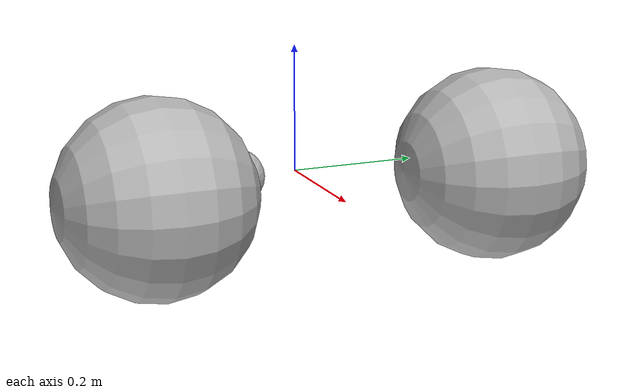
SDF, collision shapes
<sdf version='1.6'>
  <model name='Eve_base'>
    <link name='base'>
      <pose frame=''>0 0 0 0 -0 0</pose>
      <inertial>
        <pose frame=''>0.021997 0.006327 -0.006204 0 -0 0</pose>
        <mass>13.6475</mass>
        <inertia>
          <ixx>0.461101</ixx>
          <ixy>-0.004042</ixy>
          <ixz>-0.02001</ixz>
          <iyy>0.246583</iyy>
          <iyz>-0.00011</iyz>
          <izz>0.67952</izz>
        </inertia>
      </inertial>
      <collision name='base_collision'>
        <pose frame=''>-0.28 0 -0.08 1.5708 -0 1.5708</pose>
        <geometry>
          <sphere>
            <radius>0.05</radius>
          </sphere>
        </geometry>
      </collision>
      <visual name='base_visual'>
        <pose frame=''>0 0 0 1.5708 -0 1.5708</pose>
        <geometry>
          <mesh>
            <scale>1 1 1</scale>
            <uri>model://eve/meshes/base_wheels.obj</uri>
          </mesh>
        </geometry>
      </visual>
    </link>
    <link name='l_wheel'>
      <pose frame=''>0.142 0.26983 0.019 0 -0 0</pose>
      <inertial>
        <pose frame=''>0 0 0 0 -0 0</pose>
        <mass>1.52693</mass>
        <inertia>
          <ixx>0.007129</ixx>
          <ixy>-0</ixy>
          <ixz>-0</ixz>
          <iyy>0.013685</iyy>
          <iyz>-0</iyz>
          <izz>0.007131</izz>
        </inertia>
      </inertial>
      <collision name='l_wheel_collision'>
        <pose frame=''>0 0 0 1.5708 -0 0</pose>
        <geometry>
          <sphere>
            <radius>0.15</radius>
          </sphere>
        </geometry>
      </collision>
      <visual name='l_wheel_visual'>
        <pose frame=''>0 0 0 1.5708 0 -1.5708</pose>
        <geometry>
          <mesh>
            <scale>1 1 1</scale>
            <uri>model://eve/meshes/wheel.obj</uri>
          </mesh>
        </geometry>
      </visual>
    </link>
    <joint name='j_l_wheel_y' type='revolute'>
      <child>l_wheel</child>
      <parent>base</parent>
      <axis>
        <xyz>0 1 0</xyz>
        <limit>
          <lower>-1e+16</lower>
          <upper>1e+16</upper>
          <effort>-1</effort>
          <velocity>1</velocity>
        </limit>
        <dynamics>
          <spring_reference>0</spring_reference>
          <spring_stiffness>0</spring_stiffness>
        </dynamics>
        <use_parent_model_frame>1</use_parent_model_frame>
      </axis>
    </joint>
    <link name='r_wheel'>
      <pose frame=''>0.142 -0.26983 0.019 0 -0 0</pose>
      <inertial>
        <pose frame=''>0 0 0 0 -0 0</pose>
        <mass>1.52693</mass>
        <inertia>
          <ixx>0.007129</ixx>
          <ixy>-0</ixy>
          <ixz>-0</ixz>
          <iyy>0.013685</iyy>
          <iyz>-0</iyz>
          <izz>0.007131</izz>
        </inertia>
      </inertial>
      <collision name='r_wheel_collision'>
        <pose frame=''>0 0 0 1.5708 -0 0</pose>
        <geometry>
          <sphere>
            <radius>0.15</radius>
          </sphere>
        </geometry>
      </collision>
      <visual name='r_wheel_visual'>
        <pose frame=''>0 0 0 1.5708 -0 1.5708</pose>
        <geometry>
          <mesh>
            <scale>1 1 1</scale>
            <uri>model://eve/meshes/wheel.obj</uri>
          </mesh>
        </geometry>
      </visual>
    </link>
    <joint name='j_r_wheel_y' type='revolute'>
      <child>r_wheel</child>
      <parent>base</parent>
      <axis>
        <xyz>0 1 0</xyz>
        <limit>
          <lower>-1e+16</lower>
          <upper>1e+16</upper>
          <effort>-1</effort>
          <velocity>1</velocity>
        </limit>
        <dynamics>
          <spring_reference>0</spring_reference>
          <spring_stiffness>0</spring_stiffness>
        </dynamics>
        <use_parent_model_frame>1</use_parent_model_frame>
      </axis>
    </joint>
  </model>
</sdf>
